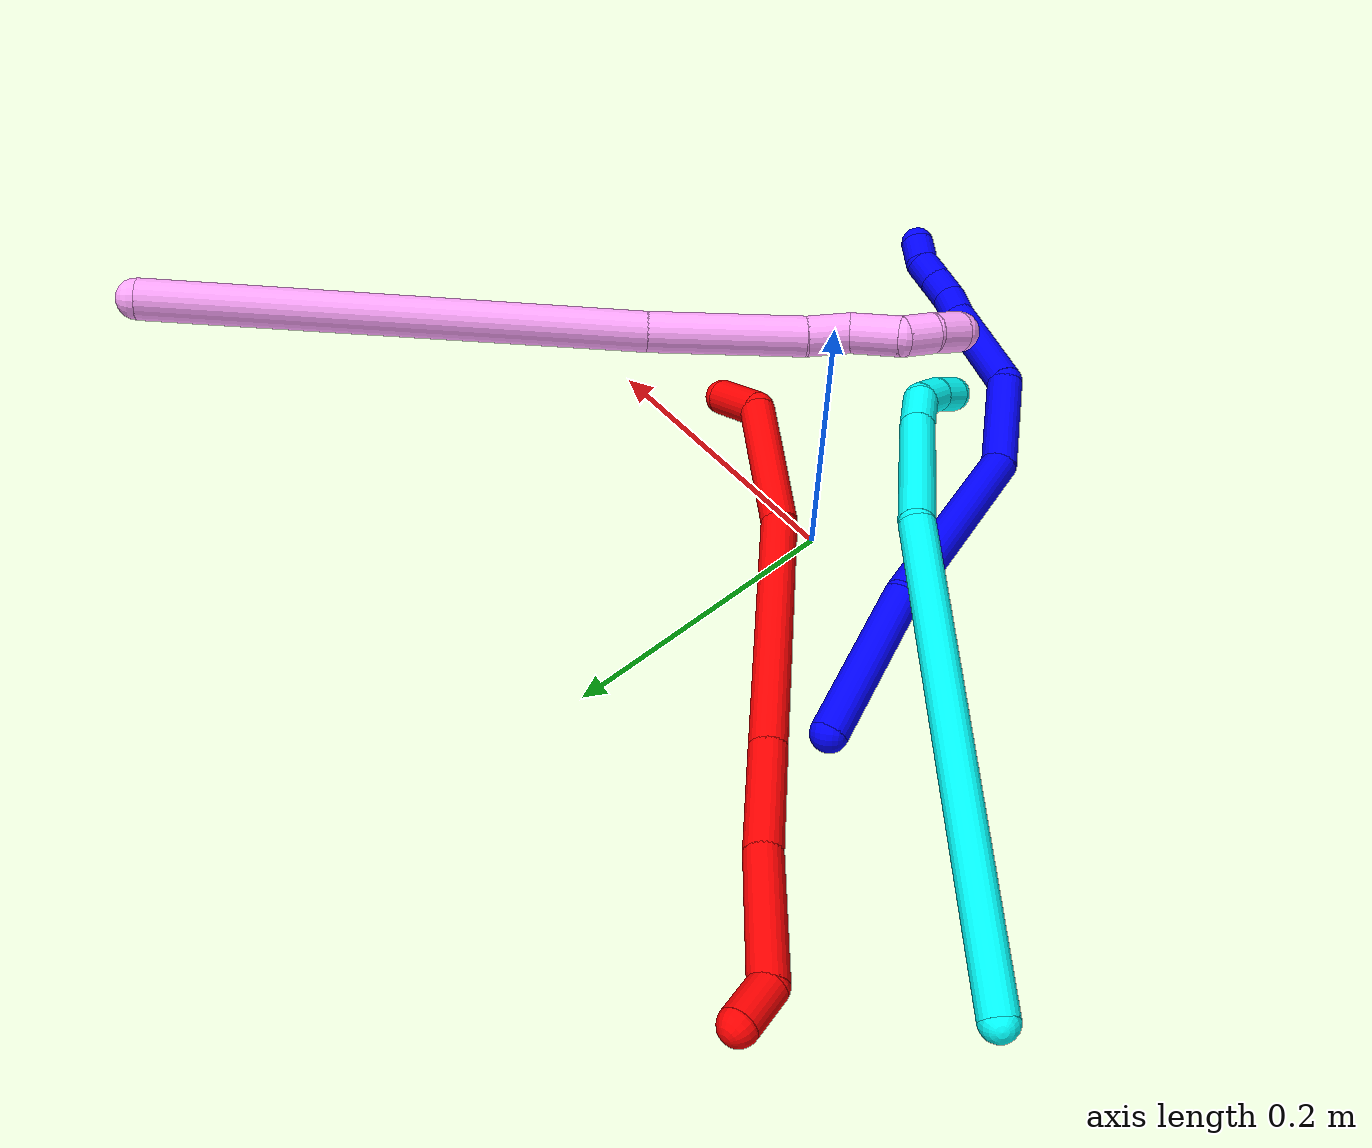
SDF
<sdf version="1.7">
 <world name="default">
  <plugin name="TubeGeneratorPlugin" filename="libtube_generator_plugin.so"/>
  <model name="photoneo_s_sensor">
   <static>1</static>
   <pose>0 0 2 1.57079 1.57079 3.14159</pose>
   <link name="link">
    <inertial><mass>0.1</mass></inertial>
    <sensor name="sensor" type="depth">
     <update_rate>30</update_rate>
     <camera>
      <horizontal_fov>1.22</horizontal_fov>
      <image><width>1920</width><height>1200</height><format>B8G8R8</format></image>
      <clip><near>0.1</near><far>4</far></clip>
      <depth_camera><output>points</output></depth_camera>
     </camera>
     <plugin name="camera_plugin" filename="libgazebo_ros_depth_camera.so">
      <baseline>0.2</baseline>
      <alwaysOn>1</alwaysOn>
      <updateRate>0.0</updateRate>
      <cameraName>camera_ir</cameraName>
      <imageTopicName>/camera/color/image_raw</imageTopicName>
      <cameraInfoTopicName>/camera/color/camera_info</cameraInfoTopicName>
      <depthImageTopicName>/camera/depth/image_raw</depthImageTopicName>
      <depthImageCameraInfoTopicName>/camera/depth/camera_info</depthImageCameraInfoTopicName>
      <pointCloudTopicName>/camera/depth/points</pointCloudTopicName>
      <frameName>fr_optical</frameName>
      <pointCloudCutoff>0.1</pointCloudCutoff>
      <pointCloudCutoffMax>2.0</pointCloudCutoffMax>
      <distortionK1>0</distortionK1>
      <distortionK2>0</distortionK2>
      <distortionK3>0</distortionK3>
      <distortionT1>0</distortionT1>
      <distortionT2>0</distortionT2>
      <CxPrime>0</CxPrime>
      <Cx>0</Cx>
      <Cy>0</Cy>
      <focalLength>0</focalLength>
      <hackBaseline>0</hackBaseline>
     </plugin>
    </sensor>
   </link>
  </model>
  <gravity>0 0 -9.8</gravity>
  <magnetic_field>6e-06 2.3e-05 -4.2e-05</magnetic_field>
  <atmosphere type="adiabatic"/>
  <physics name="default_physics" default="0" type="ode">
   <max_step_size>0.003</max_step_size>
   <real_time_factor>1</real_time_factor>
   <real_time_update_rate>1000</real_time_update_rate>
   <max_contacts>10000</max_contacts>
   <ode>
    <solver>
     <type>quick</type>
     <iters>100</iters>
     <sor>1.3</sor>
     <use_dynamic_moi_rescaling>0</use_dynamic_moi_rescaling>
    </solver>
    <constraints>
     <contact_max_correcting_vel>0</contact_max_correcting_vel>
     <contact_surface_layer>0.001</contact_surface_layer>
     <cfm>0</cfm>
     <erp>0.2</erp>
    </constraints>
   </ode>
  </physics>
  <scene><ambient>0.4 0.4 0.4 1</ambient><background>0.7 0.7 0.7 1</background><shadows>0</shadows></scene>
  <audio><device>default</device></audio>
  <spherical_coordinates>
   <surface_model>EARTH_WGS84</surface_model>
   <latitude_deg>0</latitude_deg>
   <longitude_deg>0</longitude_deg>
   <elevation>0</elevation>
   <heading_deg>0</heading_deg>
  </spherical_coordinates>
  <model name="bin">
   <static>1</static>
   <link name="bottom">
    <collision name="collision-bottom">
     <pose>0 0 -0.01 0 -0 0</pose>
     <geometry><box><size>0.8 0.6 0.02</size></box></geometry>
     <surface>
      <friction><ode><mu>100</mu><mu2>100</mu2></ode></friction>
      <contact><collide_bitmask>65535</collide_bitmask></contact>
     </surface>
    </collision>
   </link>
   <link name="west_wall">
    <collision name="collision-west_wall">
     <pose>-0.41 0 0.1 0 -0 0</pose>
     <geometry><box><size>0.02 0.6 0.2</size></box></geometry>
     <surface>
      <friction><ode><mu>100</mu><mu2>100</mu2></ode></friction>
      <contact><collide_bitmask>65535</collide_bitmask></contact>
     </surface>
    </collision>
   </link>
   <link name="east_wall">
    <collision name="collision-east_wall">
     <pose>0.41 0 0.1 0 -0 0</pose>
     <geometry><box><size>0.02 0.6 0.2</size></box></geometry>
     <surface>
      <friction><ode><mu>100</mu><mu2>100</mu2></ode></friction>
      <contact><collide_bitmask>65535</collide_bitmask></contact>
     </surface>
    </collision>
   </link>
   <link name="south_wall">
    <collision name="collision-south_wall">
     <pose>0 -0.31 0.1 0 -0 0</pose>
     <geometry><box><size>0.8 0.02 0.2</size></box></geometry>
     <surface>
      <friction><ode><mu>100</mu><mu2>100</mu2></ode></friction>
      <contact><collide_bitmask>65535</collide_bitmask></contact>
     </surface>
    </collision>
   </link>
   <link name="north_wall">
    <collision name="collision-north_wall">
     <pose>0 0.31 0.1 0 -0 0</pose>
     <geometry><box><size>0.8 0.02 0.2</size></box></geometry>
     <surface>
      <friction><ode><mu>100</mu><mu2>100</mu2></ode></friction>
      <contact><collide_bitmask>65535</collide_bitmask></contact>
     </surface>
    </collision>
   </link>
  </model>
  <model name="1">
   <static>0</static>
   <link name="1">
    <collision name="collision-cylinder-e_1_1_4">
     <pose>0.036092 -0.037578 0.015286 1.18446 0.727066 0.501155</pose>
     <geometry><cylinder><radius>0.0125</radius><length>0.108598</length></cylinder></geometry>
     <surface>
      <friction><ode><mu>1.16</mu><mu2>1.16</mu2><slip1>0</slip1><slip2>0</slip2></ode></friction>
      <contact><ode><kp>1e+06</kp><kd>1</kd><max_vel>0</max_vel><min_depth>0.001</min_depth></ode></contact>
     </surface>
    </collision>
    <visual name="visual-cylinder-e_1_1_4">
     <pose>0.036092 -0.037578 0.015286 1.18446 0.727066 0.501155</pose>
     <geometry><cylinder><radius>0.0125</radius><length>0.108598</length></cylinder></geometry>
     <material><ambient>0 0 1 1</ambient></material>
    </visual>
    <collision name="collision-cylinder-e_2_4_5">
     <pose>0.104308 -0.139751 0.05398 1.22313 0.437379 0.30921</pose>
     <geometry><cylinder><radius>0.0125</radius><length>0.151689</length></cylinder></geometry>
     <surface>
      <friction><ode><mu>1.16</mu><mu2>1.16</mu2><slip1>0</slip1><slip2>0</slip2></ode></friction>
      <contact><ode><kp>1e+06</kp><kd>1</kd><max_vel>0</max_vel><min_depth>0.001</min_depth></ode></contact>
     </surface>
    </collision>
    <visual name="visual-cylinder-e_2_4_5">
     <pose>0.104308 -0.139751 0.05398 1.22313 0.437379 0.30921</pose>
     <geometry><cylinder><radius>0.0125</radius><length>0.151689</length></cylinder></geometry>
     <material><ambient>0 0 1 1</ambient></material>
    </visual>
    <collision name="collision-cylinder-e_3_5_6">
     <pose>0.162598 -0.225205 0.075388 1.6664 0.895519 0.97246</pose>
     <geometry><cylinder><radius>0.0125</radius><length>0.067044</length></cylinder></geometry>
     <surface>
      <friction><ode><mu>1.16</mu><mu2>1.16</mu2><slip1>0</slip1><slip2>0</slip2></ode></friction>
      <contact><ode><kp>1e+06</kp><kd>1</kd><max_vel>0</max_vel><min_depth>0.001</min_depth></ode></contact>
     </surface>
    </collision>
    <visual name="visual-cylinder-e_3_5_6">
     <pose>0.162598 -0.225205 0.075388 1.6664 0.895519 0.97246</pose>
     <geometry><cylinder><radius>0.0125</radius><length>0.067044</length></cylinder></geometry>
     <material><ambient>0 0 1 1</ambient></material>
    </visual>
    <collision name="collision-cylinder-e_4_6_7">
     <pose>0.206022 -0.280362 0.052391 2.12012 0.405388 0.70309</pose>
     <geometry><cylinder><radius>0.0125</radius><length>0.087523</length></cylinder></geometry>
     <surface>
      <friction><ode><mu>1.16</mu><mu2>1.16</mu2><slip1>0</slip1><slip2>0</slip2></ode></friction>
      <contact><ode><kp>1e+06</kp><kd>1</kd><max_vel>0</max_vel><min_depth>0.001</min_depth></ode></contact>
     </surface>
    </collision>
    <visual name="visual-cylinder-e_4_6_7">
     <pose>0.206022 -0.280362 0.052391 2.12012 0.405388 0.70309</pose>
     <geometry><cylinder><radius>0.0125</radius><length>0.087523</length></cylinder></geometry>
     <material><ambient>0 0 1 1</ambient></material>
    </visual>
    <collision name="collision-cylinder-e_5_7_8">
     <pose>0.229151 -0.323534 0.026307 2.09135 0.521044 0.86246</pose>
     <geometry><cylinder><radius>0.0125</radius><length>0.023588</length></cylinder></geometry>
     <surface>
      <friction><ode><mu>1.16</mu><mu2>1.16</mu2><slip1>0</slip1><slip2>0</slip2></ode></friction>
      <contact><ode><kp>1e+06</kp><kd>1</kd><max_vel>0</max_vel><min_depth>0.001</min_depth></ode></contact>
     </surface>
    </collision>
    <visual name="visual-cylinder-e_5_7_8">
     <pose>0.229151 -0.323534 0.026307 2.09135 0.521044 0.86246</pose>
     <geometry><cylinder><radius>0.0125</radius><length>0.023588</length></cylinder></geometry>
     <material><ambient>0 0 1 1</ambient></material>
    </visual>
    <collision name="collision-cylinder-e_6_8_9">
     <pose>0.240712 -0.338428 0.014856 2.38395 0.576069 1.27971</pose>
     <geometry><cylinder><radius>0.0125</radius><length>0.02089</length></cylinder></geometry>
     <surface>
      <friction><ode><mu>1.16</mu><mu2>1.16</mu2><slip1>0</slip1><slip2>0</slip2></ode></friction>
      <contact><ode><kp>1e+06</kp><kd>1</kd><max_vel>0</max_vel><min_depth>0.001</min_depth></ode></contact>
     </surface>
    </collision>
    <visual name="visual-cylinder-e_6_8_9">
     <pose>0.240712 -0.338428 0.014856 2.38395 0.576069 1.27971</pose>
     <geometry><cylinder><radius>0.0125</radius><length>0.02089</length></cylinder></geometry>
     <material><ambient>0 0 1 1</ambient></material>
    </visual>
    <collision name="collision-cylinder-e_7_9_10">
     <pose>0.252293 -0.349735 0.001994 2.45858 0.612848 1.4547</pose>
     <geometry><cylinder><radius>0.0125</radius><length>0.020484</length></cylinder></geometry>
     <surface>
      <friction><ode><mu>1.16</mu><mu2>1.16</mu2><slip1>0</slip1><slip2>0</slip2></ode></friction>
      <contact><ode><kp>1e+06</kp><kd>1</kd><max_vel>0</max_vel><min_depth>0.001</min_depth></ode></contact>
     </surface>
    </collision>
    <visual name="visual-cylinder-e_7_9_10">
     <pose>0.252293 -0.349735 0.001994 2.45858 0.612848 1.4547</pose>
     <geometry><cylinder><radius>0.0125</radius><length>0.020484</length></cylinder></geometry>
     <material><ambient>0 0 1 1</ambient></material>
    </visual>
    <collision name="collision-cylinder-e_8_10_2">
     <pose>0.265201 -0.361542 -0.007683 2.02445 0.768796 1.14891</pose>
     <geometry><cylinder><radius>0.0125</radius><length>0.020184</length></cylinder></geometry>
     <surface>
      <friction><ode><mu>1.16</mu><mu2>1.16</mu2><slip1>0</slip1><slip2>0</slip2></ode></friction>
      <contact><ode><kp>1e+06</kp><kd>1</kd><max_vel>0</max_vel><min_depth>0.001</min_depth></ode></contact>
     </surface>
    </collision>
    <visual name="visual-cylinder-e_8_10_2">
     <pose>0.265201 -0.361542 -0.007683 2.02445 0.768796 1.14891</pose>
     <geometry><cylinder><radius>0.0125</radius><length>0.020184</length></cylinder></geometry>
     <material><ambient>0 0 1 1</ambient></material>
    </visual>
    <collision name="collision-sphere-2">
     <pose>0.272217 -0.368062 -0.010862 0 -0 0</pose>
     <geometry><sphere><radius>0.0125</radius></sphere></geometry>
     <surface>
      <friction><ode><mu>1.16</mu><mu2>1.16</mu2><slip1>0</slip1><slip2>0</slip2></ode></friction>
      <contact><ode><kp>1e+06</kp><kd>1</kd><max_vel>0</max_vel><min_depth>0.001</min_depth></ode></contact>
     </surface>
    </collision>
    <visual name="visual-sphere-2">
     <pose>0.272217 -0.368062 -0.010862 0 -0 0</pose>
     <geometry><sphere><radius>0.0125</radius></sphere></geometry>
     <material><ambient>0 0 1 1</ambient></material>
    </visual>
    <collision name="collision-sphere-10">
     <pose>0.258184 -0.355023 -0.004504 0 -0 0</pose>
     <geometry><sphere><radius>0.0125</radius></sphere></geometry>
     <surface>
      <friction><ode><mu>1.16</mu><mu2>1.16</mu2><slip1>0</slip1><slip2>0</slip2></ode></friction>
      <contact><ode><kp>1e+06</kp><kd>1</kd><max_vel>0</max_vel><min_depth>0.001</min_depth></ode></contact>
     </surface>
    </collision>
    <visual name="visual-sphere-10">
     <pose>0.258184 -0.355023 -0.004504 0 -0 0</pose>
     <geometry><sphere><radius>0.0125</radius></sphere></geometry>
     <material><ambient>0 0 1 1</ambient></material>
    </visual>
    <collision name="collision-sphere-9">
     <pose>0.246402 -0.344447 0.008493 0 -0 0</pose>
     <geometry><sphere><radius>0.0125</radius></sphere></geometry>
     <surface>
      <friction><ode><mu>1.16</mu><mu2>1.16</mu2><slip1>0</slip1><slip2>0</slip2></ode></friction>
      <contact><ode><kp>1e+06</kp><kd>1</kd><max_vel>0</max_vel><min_depth>0.001</min_depth></ode></contact>
     </surface>
    </collision>
    <visual name="visual-sphere-9">
     <pose>0.246402 -0.344447 0.008493 0 -0 0</pose>
     <geometry><sphere><radius>0.0125</radius></sphere></geometry>
     <material><ambient>0 0 1 1</ambient></material>
    </visual>
    <collision name="collision-sphere-4">
     <pose>0.072183 -0.075156 0.030572 0 -0 0</pose>
     <geometry><sphere><radius>0.0125</radius></sphere></geometry>
     <surface>
      <friction><ode><mu>1.16</mu><mu2>1.16</mu2><slip1>0</slip1><slip2>0</slip2></ode></friction>
      <contact><ode><kp>1e+06</kp><kd>1</kd><max_vel>0</max_vel><min_depth>0.001</min_depth></ode></contact>
     </surface>
    </collision>
    <visual name="visual-sphere-4">
     <pose>0.072183 -0.075156 0.030572 0 -0 0</pose>
     <geometry><sphere><radius>0.0125</radius></sphere></geometry>
     <material><ambient>0 0 1 1</ambient></material>
    </visual>
    <collision name="collision-sphere-1">
     <geometry><sphere><radius>0.0125</radius></sphere></geometry>
     <surface>
      <friction><ode><mu>1.16</mu><mu2>1.16</mu2><slip1>0</slip1><slip2>0</slip2></ode></friction>
      <contact><ode><kp>1e+06</kp><kd>1</kd><max_vel>0</max_vel><min_depth>0.001</min_depth></ode></contact>
     </surface>
    </collision>
    <visual name="visual-sphere-1">
     <geometry><sphere><radius>0.0125</radius></sphere></geometry>
     <material><ambient>0 0 1 1</ambient></material>
    </visual>
    <collision name="collision-sphere-8">
     <pose>0.235022 -0.332408 0.02122 0 -0 0</pose>
     <geometry><sphere><radius>0.0125</radius></sphere></geometry>
     <surface>
      <friction><ode><mu>1.16</mu><mu2>1.16</mu2><slip1>0</slip1><slip2>0</slip2></ode></friction>
      <contact><ode><kp>1e+06</kp><kd>1</kd><max_vel>0</max_vel><min_depth>0.001</min_depth></ode></contact>
     </surface>
    </collision>
    <visual name="visual-sphere-8">
     <pose>0.235022 -0.332408 0.02122 0 -0 0</pose>
     <geometry><sphere><radius>0.0125</radius></sphere></geometry>
     <material><ambient>0 0 1 1</ambient></material>
    </visual>
    <collision name="collision-sphere-5">
     <pose>0.136433 -0.204345 0.077388 0 -0 0</pose>
     <geometry><sphere><radius>0.0125</radius></sphere></geometry>
     <surface>
      <friction><ode><mu>1.16</mu><mu2>1.16</mu2><slip1>0</slip1><slip2>0</slip2></ode></friction>
      <contact><ode><kp>1e+06</kp><kd>1</kd><max_vel>0</max_vel><min_depth>0.001</min_depth></ode></contact>
     </surface>
    </collision>
    <visual name="visual-sphere-5">
     <pose>0.136433 -0.204345 0.077388 0 -0 0</pose>
     <geometry><sphere><radius>0.0125</radius></sphere></geometry>
     <material><ambient>0 0 1 1</ambient></material>
    </visual>
    <collision name="collision-sphere-6">
     <pose>0.188764 -0.246064 0.073388 0 -0 0</pose>
     <geometry><sphere><radius>0.0125</radius></sphere></geometry>
     <surface>
      <friction><ode><mu>1.16</mu><mu2>1.16</mu2><slip1>0</slip1><slip2>0</slip2></ode></friction>
      <contact><ode><kp>1e+06</kp><kd>1</kd><max_vel>0</max_vel><min_depth>0.001</min_depth></ode></contact>
     </surface>
    </collision>
    <visual name="visual-sphere-6">
     <pose>0.188764 -0.246064 0.073388 0 -0 0</pose>
     <geometry><sphere><radius>0.0125</radius></sphere></geometry>
     <material><ambient>0 0 1 1</ambient></material>
    </visual>
    <collision name="collision-sphere-7">
     <pose>0.223281 -0.31466 0.031395 0 -0 0</pose>
     <geometry><sphere><radius>0.0125</radius></sphere></geometry>
     <surface>
      <friction><ode><mu>1.16</mu><mu2>1.16</mu2><slip1>0</slip1><slip2>0</slip2></ode></friction>
      <contact><ode><kp>1e+06</kp><kd>1</kd><max_vel>0</max_vel><min_depth>0.001</min_depth></ode></contact>
     </surface>
    </collision>
    <visual name="visual-sphere-7">
     <pose>0.223281 -0.31466 0.031395 0 -0 0</pose>
     <geometry><sphere><radius>0.0125</radius></sphere></geometry>
     <material><ambient>0 0 1 1</ambient></material>
    </visual>
    <inertial>
     <pose>0.139258 -0.188158 0.040609 0 -0 0</pose>
     <mass>0.5</mass>
     <inertia>
      <ixx>0.000579</ixx>
      <ixy>0</ixy>
      <ixz>0</ixz>
      <iyy>0.000356</iyy>
      <iyz>0</iyz>
      <izz>0.000148</izz>
     </inertia>
    </inertial>
   </link>
   <pose>-0.124878 0.102834 0.011458 1.38787 -0.944377 -0.786489</pose>
  </model>
  <model name="2">
   <static>0</static>
   <link name="2">
    <collision name="collision-cylinder-e_1_1_4">
     <pose>0.001186 0.001803 -0.015521 -3.02595 0.075743 -1.15911</pose>
     <geometry><cylinder><radius>0.0125</radius><length>0.031341</length></cylinder></geometry>
     <surface>
      <friction><ode><mu>1.16</mu><mu2>1.16</mu2><slip1>0</slip1><slip2>0</slip2></ode></friction>
      <contact><ode><kp>1e+06</kp><kd>1</kd><max_vel>0</max_vel><min_depth>0.001</min_depth></ode></contact>
     </surface>
    </collision>
    <visual name="visual-cylinder-e_1_1_4">
     <pose>0.001186 0.001803 -0.015521 -3.02595 0.075743 -1.15911</pose>
     <geometry><cylinder><radius>0.0125</radius><length>0.031341</length></cylinder></geometry>
     <material><ambient>1 0 0 1</ambient></material>
    </visual>
    <collision name="collision-cylinder-e_2_4_5">
     <pose>0.029212 0.002082 -0.065008 3.09675 0.668276 3.01258</pose>
     <geometry><cylinder><radius>0.0125</radius><length>0.086634</length></cylinder></geometry>
     <surface>
      <friction><ode><mu>1.16</mu><mu2>1.16</mu2><slip1>0</slip1><slip2>0</slip2></ode></friction>
      <contact><ode><kp>1e+06</kp><kd>1</kd><max_vel>0</max_vel><min_depth>0.001</min_depth></ode></contact>
     </surface>
    </collision>
    <visual name="visual-cylinder-e_2_4_5">
     <pose>0.029212 0.002082 -0.065008 3.09675 0.668276 3.01258</pose>
     <geometry><cylinder><radius>0.0125</radius><length>0.086634</length></cylinder></geometry>
     <material><ambient>1 0 0 1</ambient></material>
    </visual>
    <collision name="collision-cylinder-e_3_5_6">
     <pose>0.076208 -0.004706 -0.128401 2.96462 0.593183 2.57651</pose>
     <geometry><cylinder><radius>0.0125</radius><length>0.072111</length></cylinder></geometry>
     <surface>
      <friction><ode><mu>1.16</mu><mu2>1.16</mu2><slip1>0</slip1><slip2>0</slip2></ode></friction>
      <contact><ode><kp>1e+06</kp><kd>1</kd><max_vel>0</max_vel><min_depth>0.001</min_depth></ode></contact>
     </surface>
    </collision>
    <visual name="visual-cylinder-e_3_5_6">
     <pose>0.076208 -0.004706 -0.128401 2.96462 0.593183 2.57651</pose>
     <geometry><cylinder><radius>0.0125</radius><length>0.072111</length></cylinder></geometry>
     <material><ambient>1 0 0 1</ambient></material>
    </visual>
    <collision name="collision-cylinder-e_4_6_7">
     <pose>0.143986 -0.026124 -0.227571 2.91397 0.587018 2.41844</pose>
     <geometry><cylinder><radius>0.0125</radius><length>0.171962</length></cylinder></geometry>
     <surface>
      <friction><ode><mu>1.16</mu><mu2>1.16</mu2><slip1>0</slip1><slip2>0</slip2></ode></friction>
      <contact><ode><kp>1e+06</kp><kd>1</kd><max_vel>0</max_vel><min_depth>0.001</min_depth></ode></contact>
     </surface>
    </collision>
    <visual name="visual-cylinder-e_4_6_7">
     <pose>0.143986 -0.026124 -0.227571 2.91397 0.587018 2.41844</pose>
     <geometry><cylinder><radius>0.0125</radius><length>0.171962</length></cylinder></geometry>
     <material><ambient>1 0 0 1</ambient></material>
    </visual>
    <collision name="collision-cylinder-e_5_7_8">
     <pose>0.225976 -0.053368 -0.330065 2.81513 0.782317 2.3817</pose>
     <geometry><cylinder><radius>0.0125</radius><length>0.097505</length></cylinder></geometry>
     <surface>
      <friction><ode><mu>1.16</mu><mu2>1.16</mu2><slip1>0</slip1><slip2>0</slip2></ode></friction>
      <contact><ode><kp>1e+06</kp><kd>1</kd><max_vel>0</max_vel><min_depth>0.001</min_depth></ode></contact>
     </surface>
    </collision>
    <visual name="visual-cylinder-e_5_7_8">
     <pose>0.225976 -0.053368 -0.330065 2.81513 0.782317 2.3817</pose>
     <geometry><cylinder><radius>0.0125</radius><length>0.097505</length></cylinder></geometry>
     <material><ambient>1 0 0 1</ambient></material>
    </visual>
    <collision name="collision-cylinder-e_6_8_2">
     <pose>0.27883 -0.057612 -0.36733 -2.15356 1.15338 -1.75844</pose>
     <geometry><cylinder><radius>0.0125</radius><length>0.040447</length></cylinder></geometry>
     <surface>
      <friction><ode><mu>1.16</mu><mu2>1.16</mu2><slip1>0</slip1><slip2>0</slip2></ode></friction>
      <contact><ode><kp>1e+06</kp><kd>1</kd><max_vel>0</max_vel><min_depth>0.001</min_depth></ode></contact>
     </surface>
    </collision>
    <visual name="visual-cylinder-e_6_8_2">
     <pose>0.27883 -0.057612 -0.36733 -2.15356 1.15338 -1.75844</pose>
     <geometry><cylinder><radius>0.0125</radius><length>0.040447</length></cylinder></geometry>
     <material><ambient>1 0 0 1</ambient></material>
    </visual>
    <collision name="collision-sphere-2">
     <pose>0.297317 -0.050766 -0.371842 0 -0 0</pose>
     <geometry><sphere><radius>0.0125</radius></sphere></geometry>
     <surface>
      <friction><ode><mu>1.16</mu><mu2>1.16</mu2><slip1>0</slip1><slip2>0</slip2></ode></friction>
      <contact><ode><kp>1e+06</kp><kd>1</kd><max_vel>0</max_vel><min_depth>0.001</min_depth></ode></contact>
     </surface>
    </collision>
    <visual name="visual-sphere-2">
     <pose>0.297317 -0.050766 -0.371842 0 -0 0</pose>
     <geometry><sphere><radius>0.0125</radius></sphere></geometry>
     <material><ambient>1 0 0 1</ambient></material>
    </visual>
    <collision name="collision-sphere-4">
     <pose>0.002372 0.003606 -0.031043 0 -0 0</pose>
     <geometry><sphere><radius>0.0125</radius></sphere></geometry>
     <surface>
      <friction><ode><mu>1.16</mu><mu2>1.16</mu2><slip1>0</slip1><slip2>0</slip2></ode></friction>
      <contact><ode><kp>1e+06</kp><kd>1</kd><max_vel>0</max_vel><min_depth>0.001</min_depth></ode></contact>
     </surface>
    </collision>
    <visual name="visual-sphere-4">
     <pose>0.002372 0.003606 -0.031043 0 -0 0</pose>
     <geometry><sphere><radius>0.0125</radius></sphere></geometry>
     <material><ambient>1 0 0 1</ambient></material>
    </visual>
    <collision name="collision-sphere-1">
     <geometry><sphere><radius>0.0125</radius></sphere></geometry>
     <surface>
      <friction><ode><mu>1.16</mu><mu2>1.16</mu2><slip1>0</slip1><slip2>0</slip2></ode></friction>
      <contact><ode><kp>1e+06</kp><kd>1</kd><max_vel>0</max_vel><min_depth>0.001</min_depth></ode></contact>
     </surface>
    </collision>
    <visual name="visual-sphere-1">
     <geometry><sphere><radius>0.0125</radius></sphere></geometry>
     <material><ambient>1 0 0 1</ambient></material>
    </visual>
    <collision name="collision-sphere-8">
     <pose>0.260343 -0.064457 -0.362818 0 -0 0</pose>
     <geometry><sphere><radius>0.0125</radius></sphere></geometry>
     <surface>
      <friction><ode><mu>1.16</mu><mu2>1.16</mu2><slip1>0</slip1><slip2>0</slip2></ode></friction>
      <contact><ode><kp>1e+06</kp><kd>1</kd><max_vel>0</max_vel><min_depth>0.001</min_depth></ode></contact>
     </surface>
    </collision>
    <visual name="visual-sphere-8">
     <pose>0.260343 -0.064457 -0.362818 0 -0 0</pose>
     <geometry><sphere><radius>0.0125</radius></sphere></geometry>
     <material><ambient>1 0 0 1</ambient></material>
    </visual>
    <collision name="collision-sphere-5">
     <pose>0.056053 0.000558 -0.098973 0 -0 0</pose>
     <geometry><sphere><radius>0.0125</radius></sphere></geometry>
     <surface>
      <friction><ode><mu>1.16</mu><mu2>1.16</mu2><slip1>0</slip1><slip2>0</slip2></ode></friction>
      <contact><ode><kp>1e+06</kp><kd>1</kd><max_vel>0</max_vel><min_depth>0.001</min_depth></ode></contact>
     </surface>
    </collision>
    <visual name="visual-sphere-5">
     <pose>0.056053 0.000558 -0.098973 0 -0 0</pose>
     <geometry><sphere><radius>0.0125</radius></sphere></geometry>
     <material><ambient>1 0 0 1</ambient></material>
    </visual>
    <collision name="collision-sphere-6">
     <pose>0.096363 -0.009969 -0.15783 0 -0 0</pose>
     <geometry><sphere><radius>0.0125</radius></sphere></geometry>
     <surface>
      <friction><ode><mu>1.16</mu><mu2>1.16</mu2><slip1>0</slip1><slip2>0</slip2></ode></friction>
      <contact><ode><kp>1e+06</kp><kd>1</kd><max_vel>0</max_vel><min_depth>0.001</min_depth></ode></contact>
     </surface>
    </collision>
    <visual name="visual-sphere-6">
     <pose>0.096363 -0.009969 -0.15783 0 -0 0</pose>
     <geometry><sphere><radius>0.0125</radius></sphere></geometry>
     <material><ambient>1 0 0 1</ambient></material>
    </visual>
    <collision name="collision-sphere-7">
     <pose>0.19161 -0.042279 -0.297312 0 -0 0</pose>
     <geometry><sphere><radius>0.0125</radius></sphere></geometry>
     <surface>
      <friction><ode><mu>1.16</mu><mu2>1.16</mu2><slip1>0</slip1><slip2>0</slip2></ode></friction>
      <contact><ode><kp>1e+06</kp><kd>1</kd><max_vel>0</max_vel><min_depth>0.001</min_depth></ode></contact>
     </surface>
    </collision>
    <visual name="visual-sphere-7">
     <pose>0.19161 -0.042279 -0.297312 0 -0 0</pose>
     <geometry><sphere><radius>0.0125</radius></sphere></geometry>
     <material><ambient>1 0 0 1</ambient></material>
    </visual>
    <inertial>
     <pose>0.13227 -0.024257 -0.203103 0 -0 0</pose>
     <mass>0.5</mass>
     <inertia>
      <ixx>-6.3e-05</ixx>
      <ixy>0</ixy>
      <ixz>0</ixz>
      <iyy>0.000798</iyy>
      <iyz>0</iyz>
      <izz>-0.000283</izz>
     </inertia>
    </inertial>
   </link>
   <pose>-0.233203 0.273983 0.029159 -1.44241 0.06333 0.202582</pose>
  </model>
  <model name="3">
   <static>0</static>
   <link name="3">
    <collision name="collision-cylinder-e_1_1_4">
     <pose>0.061232 -0.101158 -0.10778 2.38788 0.392724 0.931488</pose>
     <geometry><cylinder><radius>0.0125</radius><length>0.319992</length></cylinder></geometry>
     <surface>
      <friction><ode><mu>1.16</mu><mu2>1.16</mu2><slip1>0</slip1><slip2>0</slip2></ode></friction>
      <contact><ode><kp>1e+06</kp><kd>1</kd><max_vel>0</max_vel><min_depth>0.001</min_depth></ode></contact>
     </surface>
    </collision>
    <visual name="visual-cylinder-e_1_1_4">
     <pose>0.061232 -0.101158 -0.10778 2.38788 0.392724 0.931488</pose>
     <geometry><cylinder><radius>0.0125</radius><length>0.319992</length></cylinder></geometry>
     <material><ambient>0.003922 1 0.996078 1</ambient></material>
    </visual>
    <collision name="collision-cylinder-e_2_4_5">
     <pose>0.128483 -0.226949 -0.261637 2.65065 0.114709 0.450598</pose>
     <geometry><cylinder><radius>0.0125</radius><length>0.10519</length></cylinder></geometry>
     <surface>
      <friction><ode><mu>1.16</mu><mu2>1.16</mu2><slip1>0</slip1><slip2>0</slip2></ode></friction>
      <contact><ode><kp>1e+06</kp><kd>1</kd><max_vel>0</max_vel><min_depth>0.001</min_depth></ode></contact>
     </surface>
    </collision>
    <visual name="visual-cylinder-e_2_4_5">
     <pose>0.128483 -0.226949 -0.261637 2.65065 0.114709 0.450598</pose>
     <geometry><cylinder><radius>0.0125</radius><length>0.10519</length></cylinder></geometry>
     <material><ambient>0.003922 1 0.996078 1</ambient></material>
    </visual>
    <collision name="collision-cylinder-e_3_5_6">
     <pose>0.135476 -0.259621 -0.321398 2.61041 0.061271 0.22437</pose>
     <geometry><cylinder><radius>0.0125</radius><length>0.031798</length></cylinder></geometry>
     <surface>
      <friction><ode><mu>1.16</mu><mu2>1.16</mu2><slip1>0</slip1><slip2>0</slip2></ode></friction>
      <contact><ode><kp>1e+06</kp><kd>1</kd><max_vel>0</max_vel><min_depth>0.001</min_depth></ode></contact>
     </surface>
    </collision>
    <visual name="visual-cylinder-e_3_5_6">
     <pose>0.135476 -0.259621 -0.321398 2.61041 0.061271 0.22437</pose>
     <geometry><cylinder><radius>0.0125</radius><length>0.031798</length></cylinder></geometry>
     <material><ambient>0.003922 1 0.996078 1</ambient></material>
    </visual>
    <collision name="collision-cylinder-e_4_6_7">
     <pose>0.130674 -0.271254 -0.343635 2.74381 -0.556776 -1.91317</pose>
     <geometry><cylinder><radius>0.0125</radius><length>0.02186</length></cylinder></geometry>
     <surface>
      <friction><ode><mu>1.16</mu><mu2>1.16</mu2><slip1>0</slip1><slip2>0</slip2></ode></friction>
      <contact><ode><kp>1e+06</kp><kd>1</kd><max_vel>0</max_vel><min_depth>0.001</min_depth></ode></contact>
     </surface>
    </collision>
    <visual name="visual-cylinder-e_4_6_7">
     <pose>0.130674 -0.271254 -0.343635 2.74381 -0.556776 -1.91317</pose>
     <geometry><cylinder><radius>0.0125</radius><length>0.02186</length></cylinder></geometry>
     <material><ambient>0.003922 1 0.996078 1</ambient></material>
    </visual>
    <collision name="collision-cylinder-e_5_7_2">
     <pose>0.118122 -0.277055 -0.36001 2.86661 -0.695039 -2.41183</pose>
     <geometry><cylinder><radius>0.0125</radius><length>0.021161</length></cylinder></geometry>
     <surface>
      <friction><ode><mu>1.16</mu><mu2>1.16</mu2><slip1>0</slip1><slip2>0</slip2></ode></friction>
      <contact><ode><kp>1e+06</kp><kd>1</kd><max_vel>0</max_vel><min_depth>0.001</min_depth></ode></contact>
     </surface>
    </collision>
    <visual name="visual-cylinder-e_5_7_2">
     <pose>0.118122 -0.277055 -0.36001 2.86661 -0.695039 -2.41183</pose>
     <geometry><cylinder><radius>0.0125</radius><length>0.021161</length></cylinder></geometry>
     <material><ambient>0.003922 1 0.996078 1</ambient></material>
    </visual>
    <collision name="collision-sphere-2">
     <pose>0.111346 -0.279262 -0.367831 0 -0 0</pose>
     <geometry><sphere><radius>0.0125</radius></sphere></geometry>
     <surface>
      <friction><ode><mu>1.16</mu><mu2>1.16</mu2><slip1>0</slip1><slip2>0</slip2></ode></friction>
      <contact><ode><kp>1e+06</kp><kd>1</kd><max_vel>0</max_vel><min_depth>0.001</min_depth></ode></contact>
     </surface>
    </collision>
    <visual name="visual-sphere-2">
     <pose>0.111346 -0.279262 -0.367831 0 -0 0</pose>
     <geometry><sphere><radius>0.0125</radius></sphere></geometry>
     <material><ambient>0.003922 1 0.996078 1</ambient></material>
    </visual>
    <collision name="collision-sphere-7">
     <pose>0.124898 -0.274849 -0.35219 0 -0 0</pose>
     <geometry><sphere><radius>0.0125</radius></sphere></geometry>
     <surface>
      <friction><ode><mu>1.16</mu><mu2>1.16</mu2><slip1>0</slip1><slip2>0</slip2></ode></friction>
      <contact><ode><kp>1e+06</kp><kd>1</kd><max_vel>0</max_vel><min_depth>0.001</min_depth></ode></contact>
     </surface>
    </collision>
    <visual name="visual-sphere-7">
     <pose>0.124898 -0.274849 -0.35219 0 -0 0</pose>
     <geometry><sphere><radius>0.0125</radius></sphere></geometry>
     <material><ambient>0.003922 1 0.996078 1</ambient></material>
    </visual>
    <collision name="collision-sphere-6">
     <pose>0.13645 -0.26766 -0.33508 0 -0 0</pose>
     <geometry><sphere><radius>0.0125</radius></sphere></geometry>
     <surface>
      <friction><ode><mu>1.16</mu><mu2>1.16</mu2><slip1>0</slip1><slip2>0</slip2></ode></friction>
      <contact><ode><kp>1e+06</kp><kd>1</kd><max_vel>0</max_vel><min_depth>0.001</min_depth></ode></contact>
     </surface>
    </collision>
    <visual name="visual-sphere-6">
     <pose>0.13645 -0.26766 -0.33508 0 -0 0</pose>
     <geometry><sphere><radius>0.0125</radius></sphere></geometry>
     <material><ambient>0.003922 1 0.996078 1</ambient></material>
    </visual>
    <collision name="collision-sphere-5">
     <pose>0.134503 -0.251582 -0.307715 0 -0 0</pose>
     <geometry><sphere><radius>0.0125</radius></sphere></geometry>
     <surface>
      <friction><ode><mu>1.16</mu><mu2>1.16</mu2><slip1>0</slip1><slip2>0</slip2></ode></friction>
      <contact><ode><kp>1e+06</kp><kd>1</kd><max_vel>0</max_vel><min_depth>0.001</min_depth></ode></contact>
     </surface>
    </collision>
    <visual name="visual-sphere-5">
     <pose>0.134503 -0.251582 -0.307715 0 -0 0</pose>
     <geometry><sphere><radius>0.0125</radius></sphere></geometry>
     <material><ambient>0.003922 1 0.996078 1</ambient></material>
    </visual>
    <collision name="collision-sphere-1">
     <geometry><sphere><radius>0.0125</radius></sphere></geometry>
     <surface>
      <friction><ode><mu>1.16</mu><mu2>1.16</mu2><slip1>0</slip1><slip2>0</slip2></ode></friction>
      <contact><ode><kp>1e+06</kp><kd>1</kd><max_vel>0</max_vel><min_depth>0.001</min_depth></ode></contact>
     </surface>
    </collision>
    <visual name="visual-sphere-1">
     <geometry><sphere><radius>0.0125</radius></sphere></geometry>
     <material><ambient>0.003922 1 0.996078 1</ambient></material>
    </visual>
    <collision name="collision-sphere-4">
     <pose>0.122463 -0.202316 -0.215559 0 -0 0</pose>
     <geometry><sphere><radius>0.0125</radius></sphere></geometry>
     <surface>
      <friction><ode><mu>1.16</mu><mu2>1.16</mu2><slip1>0</slip1><slip2>0</slip2></ode></friction>
      <contact><ode><kp>1e+06</kp><kd>1</kd><max_vel>0</max_vel><min_depth>0.001</min_depth></ode></contact>
     </surface>
    </collision>
    <visual name="visual-sphere-4">
     <pose>0.122463 -0.202316 -0.215559 0 -0 0</pose>
     <geometry><sphere><radius>0.0125</radius></sphere></geometry>
     <material><ambient>0.003922 1 0.996078 1</ambient></material>
    </visual>
    <inertial>
     <pose>0.085545 -0.15258 -0.17472 0 -0 0</pose>
     <mass>0.5</mass>
     <inertia>
      <ixx>0.00369</ixx>
      <ixy>0</ixy>
      <ixz>0</ixz>
      <iyy>0.001359</iyy>
      <iyz>0</iyz>
      <izz>0.000696</izz>
     </inertia>
    </inertial>
   </link>
   <pose>-0.318848 0.158267 0.012091 -0.843056 -0.309178 0.568854</pose>
  </model>
  <model name="4">
   <static>0</static>
   <link name="4">
    <collision name="collision-cylinder-e_1_1_4">
     <pose>-2.1e-05 0.000647 -0.150914 -3.1373 -0.000141 0.065519</pose>
     <geometry><cylinder><radius>0.0125</radius><length>0.301831</length></cylinder></geometry>
     <surface>
      <friction><ode><mu>1.16</mu><mu2>1.16</mu2><slip1>0</slip1><slip2>0</slip2></ode></friction>
      <contact><ode><kp>1e+06</kp><kd>1</kd><max_vel>0</max_vel><min_depth>0.001</min_depth></ode></contact>
     </surface>
    </collision>
    <visual name="visual-cylinder-e_1_1_4">
     <pose>-2.1e-05 0.000647 -0.150914 -3.1373 -0.000141 0.065519</pose>
     <geometry><cylinder><radius>0.0125</radius><length>0.301831</length></cylinder></geometry>
     <material><ambient>1 0.65098 0.996078 1</ambient></material>
    </visual>
    <collision name="collision-cylinder-e_2_4_5">
     <pose>-0.002975 -0.000599 -0.350199 3.10247 -0.060499 -1.99379</pose>
     <geometry><cylinder><radius>0.0125</radius><length>0.096993</length></cylinder></geometry>
     <surface>
      <friction><ode><mu>1.16</mu><mu2>1.16</mu2><slip1>0</slip1><slip2>0</slip2></ode></friction>
      <contact><ode><kp>1e+06</kp><kd>1</kd><max_vel>0</max_vel><min_depth>0.001</min_depth></ode></contact>
     </surface>
    </collision>
    <visual name="visual-cylinder-e_2_4_5">
     <pose>-0.002975 -0.000599 -0.350199 3.10247 -0.060499 -1.99379</pose>
     <geometry><cylinder><radius>0.0125</radius><length>0.096993</length></cylinder></geometry>
     <material><ambient>1 0.65098 0.996078 1</ambient></material>
    </visual>
    <collision name="collision-cylinder-e_3_5_6">
     <pose>-0.005863 -0.004391 -0.412154 3.0027 0.003181 0.045729</pose>
     <geometry><cylinder><radius>0.0125</radius><length>0.027432</length></cylinder></geometry>
     <surface>
      <friction><ode><mu>1.16</mu><mu2>1.16</mu2><slip1>0</slip1><slip2>0</slip2></ode></friction>
      <contact><ode><kp>1e+06</kp><kd>1</kd><max_vel>0</max_vel><min_depth>0.001</min_depth></ode></contact>
     </surface>
    </collision>
    <visual name="visual-cylinder-e_3_5_6">
     <pose>-0.005863 -0.004391 -0.412154 3.0027 0.003181 0.045729</pose>
     <geometry><cylinder><radius>0.0125</radius><length>0.027432</length></cylinder></geometry>
     <material><ambient>1 0.65098 0.996078 1</ambient></material>
    </visual>
    <collision name="collision-cylinder-e_4_6_7">
     <pose>-0.012894 -0.007188 -0.440295 3.08 -0.451602 -2.87498</pose>
     <geometry><cylinder><radius>0.0125</radius><length>0.032419</length></cylinder></geometry>
     <surface>
      <friction><ode><mu>1.16</mu><mu2>1.16</mu2><slip1>0</slip1><slip2>0</slip2></ode></friction>
      <contact><ode><kp>1e+06</kp><kd>1</kd><max_vel>0</max_vel><min_depth>0.001</min_depth></ode></contact>
     </surface>
    </collision>
    <visual name="visual-cylinder-e_4_6_7">
     <pose>-0.012894 -0.007188 -0.440295 3.08 -0.451602 -2.87498</pose>
     <geometry><cylinder><radius>0.0125</radius><length>0.032419</length></cylinder></geometry>
     <material><ambient>1 0.65098 0.996078 1</ambient></material>
    </visual>
    <collision name="collision-cylinder-e_5_7_8">
     <pose>-0.017239 -0.009324 -0.464767 3.01728 0.266573 2.27246</pose>
     <geometry><cylinder><radius>0.0125</radius><length>0.020716</length></cylinder></geometry>
     <surface>
      <friction><ode><mu>1.16</mu><mu2>1.16</mu2><slip1>0</slip1><slip2>0</slip2></ode></friction>
      <contact><ode><kp>1e+06</kp><kd>1</kd><max_vel>0</max_vel><min_depth>0.001</min_depth></ode></contact>
     </surface>
    </collision>
    <visual name="visual-cylinder-e_5_7_8">
     <pose>-0.017239 -0.009324 -0.464767 3.01728 0.266573 2.27246</pose>
     <geometry><cylinder><radius>0.0125</radius><length>0.020716</length></cylinder></geometry>
     <material><ambient>1 0.65098 0.996078 1</ambient></material>
    </visual>
    <collision name="collision-cylinder-e_6_8_2">
     <pose>-0.009903 -0.010753 -0.483897 3.12101 0.463608 3.05446</pose>
     <geometry><cylinder><radius>0.0125</radius><length>0.020608</length></cylinder></geometry>
     <surface>
      <friction><ode><mu>1.16</mu><mu2>1.16</mu2><slip1>0</slip1><slip2>0</slip2></ode></friction>
      <contact><ode><kp>1e+06</kp><kd>1</kd><max_vel>0</max_vel><min_depth>0.001</min_depth></ode></contact>
     </surface>
    </collision>
    <visual name="visual-cylinder-e_6_8_2">
     <pose>-0.009903 -0.010753 -0.483897 3.12101 0.463608 3.05446</pose>
     <geometry><cylinder><radius>0.0125</radius><length>0.020608</length></cylinder></geometry>
     <material><ambient>1 0.65098 0.996078 1</ambient></material>
    </visual>
    <collision name="collision-sphere-2">
     <pose>-0.005295 -0.010942 -0.493111 0 -0 0</pose>
     <geometry><sphere><radius>0.0125</radius></sphere></geometry>
     <surface>
      <friction><ode><mu>1.16</mu><mu2>1.16</mu2><slip1>0</slip1><slip2>0</slip2></ode></friction>
      <contact><ode><kp>1e+06</kp><kd>1</kd><max_vel>0</max_vel><min_depth>0.001</min_depth></ode></contact>
     </surface>
    </collision>
    <visual name="visual-sphere-2">
     <pose>-0.005295 -0.010942 -0.493111 0 -0 0</pose>
     <geometry><sphere><radius>0.0125</radius></sphere></geometry>
     <material><ambient>1 0.65098 0.996078 1</ambient></material>
    </visual>
    <collision name="collision-sphere-4">
     <pose>-4.2e-05 0.001294 -0.301828 0 -0 0</pose>
     <geometry><sphere><radius>0.0125</radius></sphere></geometry>
     <surface>
      <friction><ode><mu>1.16</mu><mu2>1.16</mu2><slip1>0</slip1><slip2>0</slip2></ode></friction>
      <contact><ode><kp>1e+06</kp><kd>1</kd><max_vel>0</max_vel><min_depth>0.001</min_depth></ode></contact>
     </surface>
    </collision>
    <visual name="visual-sphere-4">
     <pose>-4.2e-05 0.001294 -0.301828 0 -0 0</pose>
     <geometry><sphere><radius>0.0125</radius></sphere></geometry>
     <material><ambient>1 0.65098 0.996078 1</ambient></material>
    </visual>
    <collision name="collision-sphere-1">
     <geometry><sphere><radius>0.0125</radius></sphere></geometry>
     <surface>
      <friction><ode><mu>1.16</mu><mu2>1.16</mu2><slip1>0</slip1><slip2>0</slip2></ode></friction>
      <contact><ode><kp>1e+06</kp><kd>1</kd><max_vel>0</max_vel><min_depth>0.001</min_depth></ode></contact>
     </surface>
    </collision>
    <visual name="visual-sphere-1">
     <geometry><sphere><radius>0.0125</radius></sphere></geometry>
     <material><ambient>1 0.65098 0.996078 1</ambient></material>
    </visual>
    <collision name="collision-sphere-8">
     <pose>-0.01451 -0.010563 -0.474682 0 -0 0</pose>
     <geometry><sphere><radius>0.0125</radius></sphere></geometry>
     <surface>
      <friction><ode><mu>1.16</mu><mu2>1.16</mu2><slip1>0</slip1><slip2>0</slip2></ode></friction>
      <contact><ode><kp>1e+06</kp><kd>1</kd><max_vel>0</max_vel><min_depth>0.001</min_depth></ode></contact>
     </surface>
    </collision>
    <visual name="visual-sphere-8">
     <pose>-0.01451 -0.010563 -0.474682 0 -0 0</pose>
     <geometry><sphere><radius>0.0125</radius></sphere></geometry>
     <material><ambient>1 0.65098 0.996078 1</ambient></material>
    </visual>
    <collision name="collision-sphere-5">
     <pose>-0.005907 -0.002492 -0.39857 0 -0 0</pose>
     <geometry><sphere><radius>0.0125</radius></sphere></geometry>
     <surface>
      <friction><ode><mu>1.16</mu><mu2>1.16</mu2><slip1>0</slip1><slip2>0</slip2></ode></friction>
      <contact><ode><kp>1e+06</kp><kd>1</kd><max_vel>0</max_vel><min_depth>0.001</min_depth></ode></contact>
     </surface>
    </collision>
    <visual name="visual-sphere-5">
     <pose>-0.005907 -0.002492 -0.39857 0 -0 0</pose>
     <geometry><sphere><radius>0.0125</radius></sphere></geometry>
     <material><ambient>1 0.65098 0.996078 1</ambient></material>
    </visual>
    <collision name="collision-sphere-6">
     <pose>-0.00582 -0.00629 -0.425738 0 -0 0</pose>
     <geometry><sphere><radius>0.0125</radius></sphere></geometry>
     <surface>
      <friction><ode><mu>1.16</mu><mu2>1.16</mu2><slip1>0</slip1><slip2>0</slip2></ode></friction>
      <contact><ode><kp>1e+06</kp><kd>1</kd><max_vel>0</max_vel><min_depth>0.001</min_depth></ode></contact>
     </surface>
    </collision>
    <visual name="visual-sphere-6">
     <pose>-0.00582 -0.00629 -0.425738 0 -0 0</pose>
     <geometry><sphere><radius>0.0125</radius></sphere></geometry>
     <material><ambient>1 0.65098 0.996078 1</ambient></material>
    </visual>
    <collision name="collision-sphere-7">
     <pose>-0.019968 -0.008085 -0.454852 0 -0 0</pose>
     <geometry><sphere><radius>0.0125</radius></sphere></geometry>
     <surface>
      <friction><ode><mu>1.16</mu><mu2>1.16</mu2><slip1>0</slip1><slip2>0</slip2></ode></friction>
      <contact><ode><kp>1e+06</kp><kd>1</kd><max_vel>0</max_vel><min_depth>0.001</min_depth></ode></contact>
     </surface>
    </collision>
    <visual name="visual-sphere-7">
     <pose>-0.019968 -0.008085 -0.454852 0 -0 0</pose>
     <geometry><sphere><radius>0.0125</radius></sphere></geometry>
     <material><ambient>1 0.65098 0.996078 1</ambient></material>
    </visual>
    <inertial>
     <pose>-0.00287 -0.001262 -0.249396 0 -0 0</pose>
     <mass>0.5</mass>
     <inertia>
      <ixx>0.002341</ixx>
      <ixy>0</ixy>
      <ixz>0</ixz>
      <iyy>-0.002184</iyy>
      <iyz>0</iyz>
      <izz>-3.9e-05</izz>
     </inertia>
    </inertial>
   </link>
   <pose>0.274747 0.306649 0.21266 -1.44256 0.614533 -0.600308</pose>
  </model>
 </world>
</sdf>
